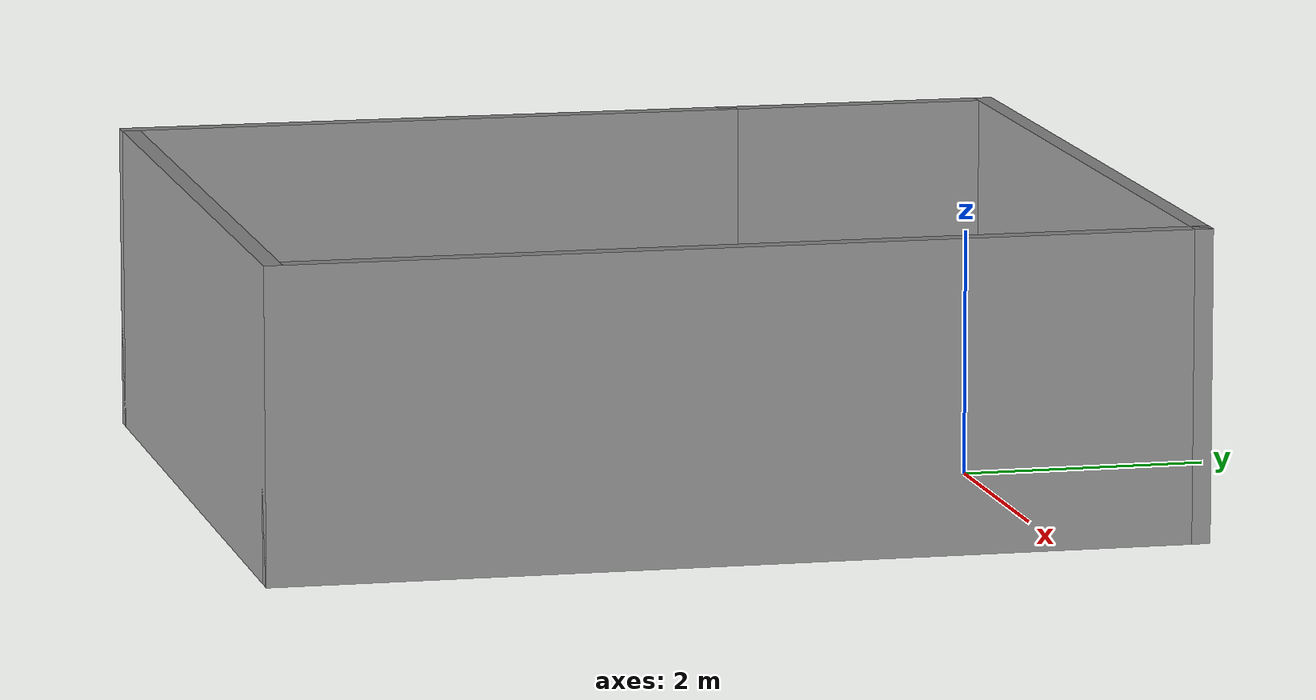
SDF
<?xml version='1.0'?>
<sdf version='1.7'>
  <model name='test_home'>
    <pose>-0.25 -2.585 0 0 -0 0</pose>
    <link name='Wall_0'>
      <collision name='Wall_0_Collision'>
        <geometry>
          <box>
            <size>5.25 0.15 2.5</size>
          </box>
        </geometry>
        <pose>0 0 1.25 0 -0 0</pose>
      </collision>
      <visual name='Wall_0_Visual'>
        <pose>0 0 1.25 0 -0 0</pose>
        <geometry>
          <box>
            <size>5.25 0.15 2.5</size>
          </box>
        </geometry>
        <material>
          <script>
            <uri>file://media/materials/scripts/gazebo.material</uri>
            <name>Gazebo/Grey</name>
          </script>
          <ambient>1 1 1 1</ambient>
        </material>
        <meta>
          <layer>0</layer>
        </meta>
      </visual>
      <pose>-3.3 -1.125 0 0 -0 -1.5708</pose>
    </link>
    <link name='Wall_1'>
      <collision name='Wall_1_Collision'>
        <geometry>
          <box>
            <size>6.75 0.15 2.5</size>
          </box>
        </geometry>
        <pose>0 0 1.25 0 -0 0</pose>
      </collision>
      <visual name='Wall_1_Visual'>
        <pose>0 0 1.25 0 -0 0</pose>
        <geometry>
          <box>
            <size>6.75 0.15 2.5</size>
          </box>
        </geometry>
        <material>
          <script>
            <uri>file://media/materials/scripts/gazebo.material</uri>
            <name>Gazebo/Grey</name>
          </script>
          <ambient>1 1 1 1</ambient>
        </material>
        <meta>
          <layer>0</layer>
        </meta>
      </visual>
      <pose>-0 -3.675 0 0 -0 0</pose>
    </link>
    <link name='Wall_2'>
      <collision name='Wall_2_Collision'>
        <geometry>
          <box>
            <size>7.5 0.15 2.5</size>
          </box>
        </geometry>
        <pose>0 0 1.25 0 -0 0</pose>
      </collision>
      <visual name='Wall_2_Visual'>
        <pose>0 0 1.25 0 -0 0</pose>
        <geometry>
          <box>
            <size>7.5 0.15 2.5</size>
          </box>
        </geometry>
        <material>
          <script>
            <uri>file://media/materials/scripts/gazebo.material</uri>
            <name>Gazebo/Grey</name>
          </script>
          <ambient>1 1 1 1</ambient>
        </material>
        <meta>
          <layer>0</layer>
        </meta>
      </visual>
      <pose>3.3 0 0 0 -0 1.5708</pose>
    </link>
    <link name='Wall_3'>
      <collision name='Wall_3_Collision'>
        <geometry>
          <box>
            <size>6.75 0.15 2.5</size>
          </box>
        </geometry>
        <pose>0 0 1.25 0 -0 0</pose>
      </collision>
      <visual name='Wall_3_Visual'>
        <pose>0 0 1.25 0 -0 0</pose>
        <geometry>
          <box>
            <size>6.75 0.15 2.5</size>
          </box>
        </geometry>
        <material>
          <script>
            <uri>file://media/materials/scripts/gazebo.material</uri>
            <name>Gazebo/Grey</name>
          </script>
          <ambient>1 1 1 1</ambient>
        </material>
        <meta>
          <layer>0</layer>
        </meta>
      </visual>
      <pose>-0 3.675 0 0 -0 3.14159</pose>
    </link>
    <link name='Wall_4'>
      <collision name='Wall_4_Collision'>
        <geometry>
          <box>
            <size>2.4 0.15 2.5</size>
          </box>
        </geometry>
        <pose>0 0 1.25 0 -0 0</pose>
      </collision>
      <visual name='Wall_4_Visual'>
        <pose>0 0 1.25 0 -0 0</pose>
        <geometry>
          <box>
            <size>2.4 0.15 2.5</size>
          </box>
        </geometry>
        <material>
          <script>
            <uri>file://media/materials/scripts/gazebo.material</uri>
            <name>Gazebo/Grey</name>
          </script>
          <ambient>1 1 1 1</ambient>
        </material>
        <meta>
          <layer>0</layer>
        </meta>
      </visual>
      <pose>-3.3 2.55 0 0 -0 -1.5708</pose>
    </link>
    <static>1</static>
  </model>
</sdf>
